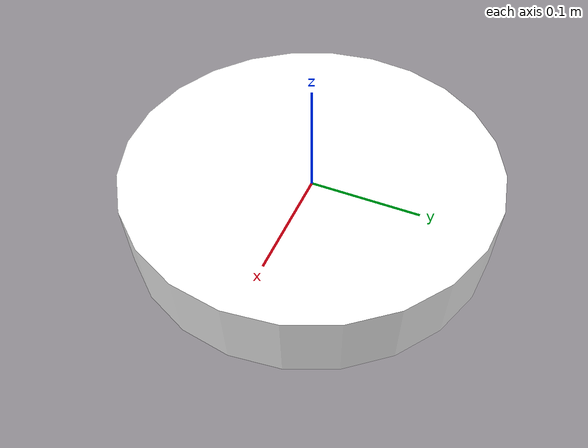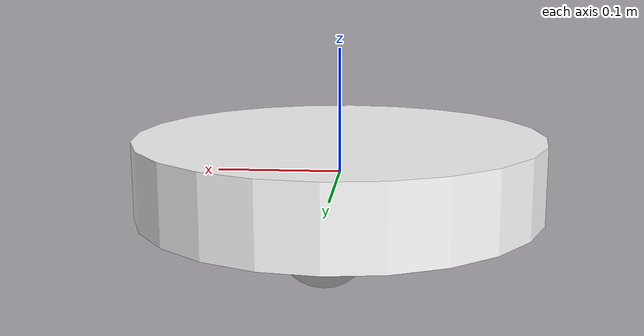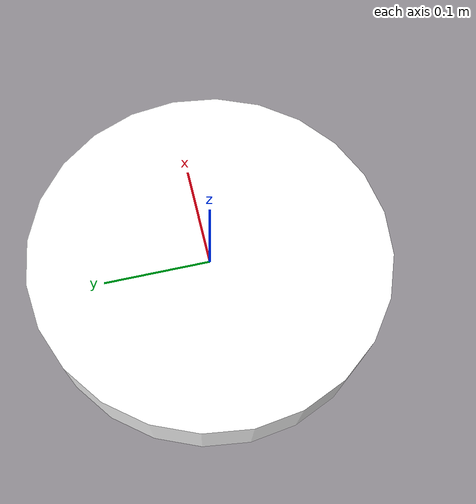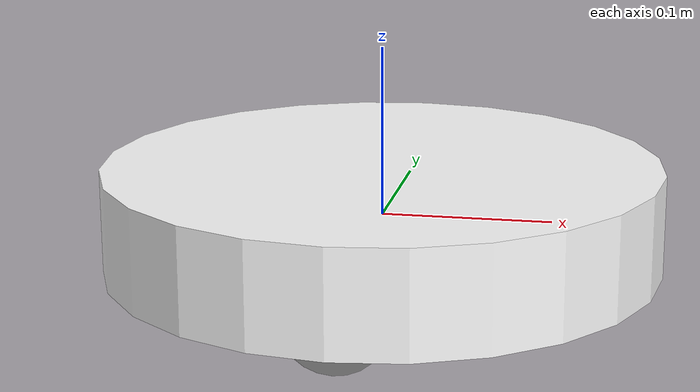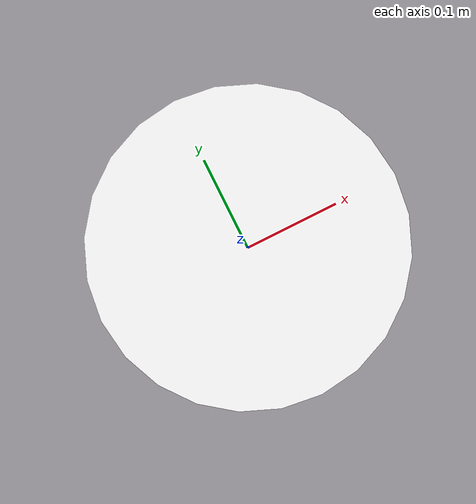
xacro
<?xml version="1.0"?>
<robot name="mtbc1" xmlns:xacro="http://ros.org/wiki/xacro">

  <!-- Define robot constants -->
  <xacro:property name="base_width" value="0.31"/>
  <xacro:property name="base_length" value="0.42"/>
  <xacro:property name="base_height" value="0.18"/>

  <xacro:property name="c1base_len" value="0.0612"/>
  <xacro:property name="c1base_rad" value="0.165"/>

  <xacro:property name="wheel_radius" value="0.10"/>
  <xacro:property name="wheel_width" value="0.04"/>
  <xacro:property name="wheel_ygap" value="0.025"/>
  <xacro:property name="wheel_zoff" value="0.05"/>
  <xacro:property name="wheel_xoff" value="0.12"/>

  <xacro:property name="c1wheel_radius" value="0.0305"/>
  <xacro:property name="c1wheel_width" value="0.027"/>
  <xacro:property name="c1wheel_ygap" value="0.033"/>
  <xacro:property name="c1wheel_zoff" value="0.015"/>
  <xacro:property name="c1wheel_xoff" value="0.00"/>

  <xacro:property name="c1caster_xoff" value="0.123"/>

  <!-- Robot Base -->
  <link name="base_link">
    <visual>
      <geometry>
        <cylinder length="${c1base_len}" radius="${c1base_rad}"/>
      </geometry>
      <material name="White">
        <color rgba="1.0 1.0 1.0 1.0"/>
      </material>
    </visual>
  </link>

   <!-- Robot Footprint -->
   <link name="base_footprint"/>

  <joint name="base_joint" type="fixed">
    <parent link="base_link"/>
    <child link="base_footprint"/>
    <origin xyz="0.0 0.0 ${-(c1wheel_radius+c1wheel_zoff)}" rpy="0 0 0"/>
  </joint>

  <!-- Wheels -->
  <xacro:macro name="wheel" params="prefix x_reflect y_reflect">
    <link name="${prefix}_link">
      <visual>
        <origin xyz="0 0 0" rpy="${pi/2} 0 0"/>
        <geometry>
            <cylinder radius="${c1wheel_radius}" length="${c1wheel_width}"/>
        </geometry>
        <material name="Gray">
          <color rgba="0.5 0.5 0.5 1.0"/>
        </material>
      </visual>
    </link>

    <joint name="${prefix}_joint" type="continuous">
      <parent link="base_link"/>
      <child link="${prefix}_link"/>
      <origin xyz="${x_reflect*c1wheel_xoff} ${y_reflect*(c1base_rad-c1wheel_ygap)} ${-c1wheel_zoff}" rpy="0 0 0"/>
      <axis xyz="0 1 0"/>
    </joint>
  </xacro:macro>

  <xacro:wheel prefix="drivewhl_l" x_reflect="-1" y_reflect="1" />
  <xacro:wheel prefix="drivewhl_r" x_reflect="-1" y_reflect="-1" />

  <!-- Caster Wheel -->
  <link name="front_caster">
    <visual>
      <geometry>
        <sphere radius="${(c1wheel_radius+c1wheel_zoff-(c1base_len/2))}"/>
      </geometry>
        <material name="White">
        <color rgba="1.0 1.0 1.0 1.0"/>
      </material>
    </visual>
  </link>

  <joint name="caster_joint" type="fixed">
    <parent link="base_link"/>
    <child link="front_caster"/>
    <origin xyz="${c1caster_xoff} 0.0 ${-(c1base_len/2)}" rpy="0 0 0"/>
  </joint>

</robot>
